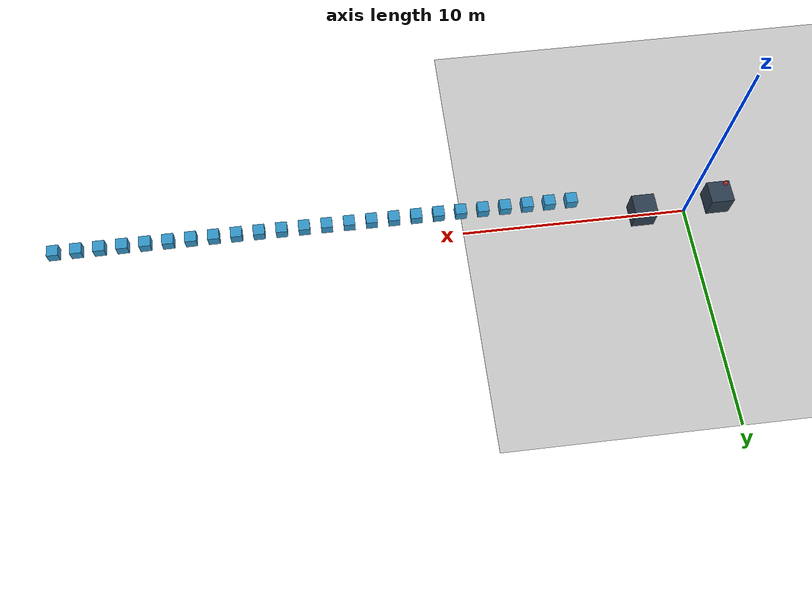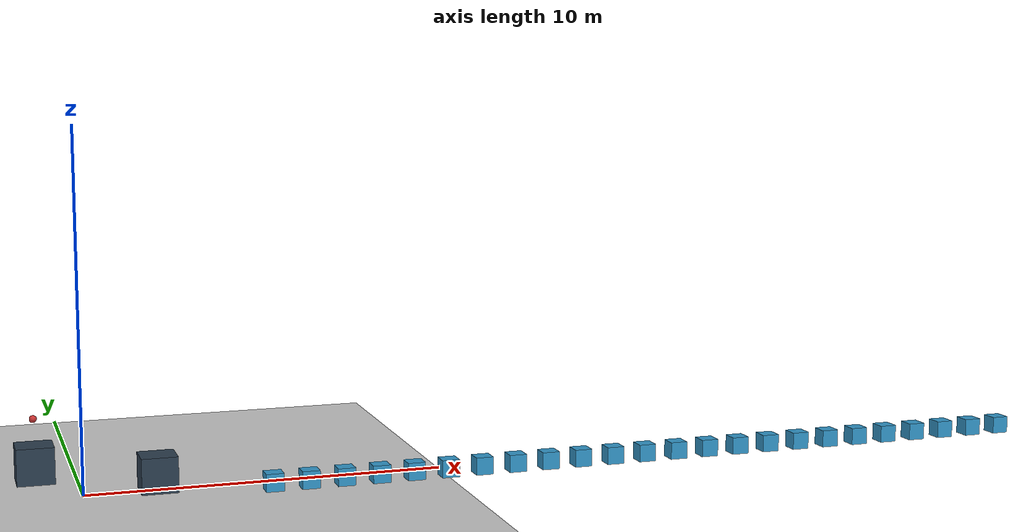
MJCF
<?xml version="1.0" ?>
<mujoco model="bridge_building">
    <!-- Options -->
    <option timestep="0.002" gravity="0 0 -9.81">
        <flag energy="enable" />
    </option>

    <!-- Assets -->
    <asset>
        <texture type="skybox" builtin="gradient" rgb1="0.3 0.5 0.7" rgb2="0 0 0" width="512" height="512"/>
        <texture name="grid" type="2d" builtin="checker" rgb1=".2 .3 .4" rgb2=".3 .4 .5" width="512" height="512" mark="edge" markrgb=".2 .3 .4"/>
        <material name="platform" texture="grid" rgba="0.7 0.7 0.7 1"/>
        <material name="block" rgba="0.2 0.6 0.8 1"/>
        <material name="ball" rgba="0.8 0.2 0.2 1"/>
    </asset>

    <!-- World -->
    <worldbody>
    <!-- Ground‑level side‑view camera -->
        <camera
            name="ground_cam"
            mode="fixed"
            pos="0.75 -40  1.1"
            fovy="4"
            xyaxes="1 0 0   0 0 1" />   <!-- makes +x point right in the image -->
        <!-- Lighting -->
        <light diffuse=".5 .5 .5" pos="0 0 3" dir="0 0 -1" castshadow="false"/>

        <!-- Ground -->
        <geom type="plane" size="10 10 0.1" rgba="0.8 0.8 0.8 1"/>

        <!-- Left Platform -->
        <body name="left_platform" pos="-1.25 0 1">
            <geom type="box" size="0.5 0.5 0.5" material="platform"/>
        </body>

        <!-- Right Platform -->
        <body name="right_platform" pos="2 0 0.5">
            <geom type="box" size="0.5 0.5 0.5" material="platform"/>
        </body>

        <!-- Ball (initially on left platform) -->
        <body name="ball" pos="-1.25 0 2.2">
            <joint name="ball_free" type="free"/>
            <geom type="sphere" size="0.1" material="ball" solimp="0.9 0.95 0.001" solref="0.001 1" mass="0.1"/>
        </body>

        <!-- Blocks -->
        <body name="block1" pos="21 -1 0.25">
            <joint name="block1_free" type="free"/>
            <geom type="box" size="0.25 0.25 0.25" mass="1" material="block" rgba="0.2 0.6 0.8 1"/>
        </body>
        <body name="block2" pos="22 -1 0.25">
            <joint name="block2_free" type="free"/>
            <geom type="box" size="0.25 0.25 0.25" mass="1" material="block" rgba="0.2 0.6 0.8 1"/>
        </body>
        <body name="block3" pos="23 -1 0.25">
            <joint name="block3_free" type="free"/>
            <geom type="box" size="0.25 0.25 0.25" mass="1" material="block" rgba="0.2 0.6 0.8 1"/>
        </body>
        <body name="block4" pos="24 -1 0.25">
            <joint name="block4_free" type="free"/>
            <geom type="box" size="0.25 0.25 0.25" mass="1" material="block" rgba="0.2 0.6 0.8 1"/>
        </body>
        <body name="block5" pos="25 -1 0.25">
            <joint name="block5_free" type="free"/>
            <geom type="box" size="0.25 0.25 0.25" mass="1" material="block" rgba="0.2 0.6 0.8 1"/>
        </body>
        <body name="block6" pos="26 -1 0.25">
            <joint name="block6_free" type="free"/>
            <geom type="box" size="0.25 0.25 0.25" mass="1" material="block" rgba="0.2 0.6 0.8 1"/>
        </body>
        <body name="block7" pos="27 -1 0.25">
            <joint name="block7_free" type="free"/>
            <geom type="box" size="0.25 0.25 0.25" mass="1" material="block" rgba="0.2 0.6 0.8 1"/>
        </body>
        <body name="block8" pos="28 -1 0.25">
            <joint name="block8_free" type="free"/>
            <geom type="box" size="0.25 0.25 0.25" mass="1" material="block" rgba="0.2 0.6 0.8 1"/>
        </body>
        <body name="block9" pos="5 -1 0.25">
            <joint name="block9_free" type="free"/>
            <geom type="box" size="0.25 0.25 0.25" mass="1" material="block" rgba="0.2 0.6 0.8 1"/>
        </body>
        <body name="block10" pos="6 -1 0.25">
            <joint name="block10_free" type="free"/>
            <geom type="box" size="0.25 0.25 0.25" mass="1" material="block" rgba="0.2 0.6 0.8 1"/>
        </body>
        <body name="block11" pos="7 -1 0.25">
            <joint name="block11_free" type="free"/>
            <geom type="box" size="0.25 0.25 0.25" mass="1" material="block" rgba="0.2 0.6 0.8 1"/>
        </body>
        <body name="block12" pos="8 -1 0.25">
            <joint name="block12_free" type="free"/>
            <geom type="box" size="0.25 0.25 0.25" mass="1" material="block" rgba="0.2 0.6 0.8 1"/>
        </body>
        <body name="block13" pos="9 -1 0.25">
            <joint name="block13_free" type="free"/>
            <geom type="box" size="0.25 0.25 0.25" mass="1" material="block" rgba="0.2 0.6 0.8 1"/>
        </body>
        <body name="block14" pos="10 -1 0.25">
            <joint name="block14_free" type="free"/>
            <geom type="box" size="0.25 0.25 0.25" mass="1" material="block" rgba="0.2 0.6 0.8 1"/>
        </body>
        <body name="block15" pos="11 -1 0.25">
            <joint name="block15_free" type="free"/>
            <geom type="box" size="0.25 0.25 0.25" mass="1" material="block" rgba="0.2 0.6 0.8 1"/>
        </body>
        <body name="block16" pos="12 -1 0.25">
            <joint name="block16_free" type="free"/>
            <geom type="box" size="0.25 0.25 0.25" mass="1" material="block" rgba="0.2 0.6 0.8 1"/>
        </body>
        <body name="block17" pos="13 -1 0.25">
            <joint name="block17_free" type="free"/>
            <geom type="box" size="0.25 0.25 0.25" mass="1" material="block" rgba="0.2 0.6 0.8 1"/>
        </body>
        <body name="block18" pos="14 -1 0.25">
            <joint name="block18_free" type="free"/>
            <geom type="box" size="0.25 0.25 0.25" mass="1" material="block" rgba="0.2 0.6 0.8 1"/>
        </body>
        <body name="block19" pos="15 -1 0.25">
            <joint name="block19_free" type="free"/>
            <geom type="box" size="0.25 0.25 0.25" mass="1" material="block" rgba="0.2 0.6 0.8 1"/>
        </body>
        <body name="block20" pos="16 -1 0.25">
            <joint name="block20_free" type="free"/>
            <geom type="box" size="0.25 0.25 0.25" mass="1" material="block" rgba="0.2 0.6 0.8 1"/>
        </body>
        <body name="block21" pos="17 -1 0.25">
            <joint name="block21_free" type="free"/>
            <geom type="box" size="0.25 0.25 0.25" mass="1" material="block" rgba="0.2 0.6 0.8 1"/>
        </body>
        <body name="block22" pos="18 -1 0.25">
            <joint name="block22_free" type="free"/>
            <geom type="box" size="0.25 0.25 0.25" mass="1" material="block" rgba="0.2 0.6 0.8 1"/>
        </body>
            <body name="block23" pos="19 -1 0.25">
                <joint name="block23_free" type="free"/>
            <geom type="box" size="0.25 0.25 0.25" mass="1" material="block" rgba="0.2 0.6 0.8 1"/>
        </body>
        <body name="block24" pos="20 -1 0.25">
            <joint name="block24_free" type="free"/>
            <geom type="box" size="0.25 0.25 0.25" mass="1" material="block" rgba="0.2 0.6 0.8 1"/>
        </body>
    </worldbody>

    <!-- Sensors -->
    <sensor>
        <!-- Ball position and velocity -->
        <framepos name="ball_pos" objtype="body" objname="ball"/>
        <framelinvel name="ball_vel" objtype="body" objname="ball"/>

        <!-- Block positions -->
        <framepos name="block1_pos" objtype="body" objname="block1"/>
        <framepos name="block2_pos" objtype="body" objname="block2"/>
        <framepos name="block3_pos" objtype="body" objname="block3"/>
        <framepos name="block4_pos" objtype="body" objname="block4"/>
        <framepos name="block5_pos" objtype="body" objname="block5"/>
        <framepos name="block6_pos" objtype="body" objname="block6"/>
        <framepos name="block7_pos" objtype="body" objname="block7"/>
        <framepos name="block8_pos" objtype="body" objname="block8"/>
        <framepos name="block9_pos" objtype="body" objname="block9"/>
        <framepos name="block10_pos" objtype="body" objname="block10"/>
        <framepos name="block11_pos" objtype="body" objname="block11"/>
        <framepos name="block12_pos" objtype="body" objname="block12"/>
        <framepos name="block13_pos" objtype="body" objname="block13"/>
        <framepos name="block14_pos" objtype="body" objname="block14"/>
        <framepos name="block15_pos" objtype="body" objname="block15"/>
        <framepos name="block16_pos" objtype="body" objname="block16"/>
        <framepos name="block17_pos" objtype="body" objname="block17"/>
        <framepos name="block18_pos" objtype="body" objname="block18"/>
        <framepos name="block19_pos" objtype="body" objname="block19"/>
        <framepos name="block20_pos" objtype="body" objname="block20"/>
        <framepos name="block21_pos" objtype="body" objname="block21"/>
        <framepos name="block22_pos" objtype="body" objname="block22"/>
        <framepos name="block23_pos" objtype="body" objname="block23"/>
        <framepos name="block24_pos" objtype="body" objname="block24"/>
    </sensor>

</mujoco>
